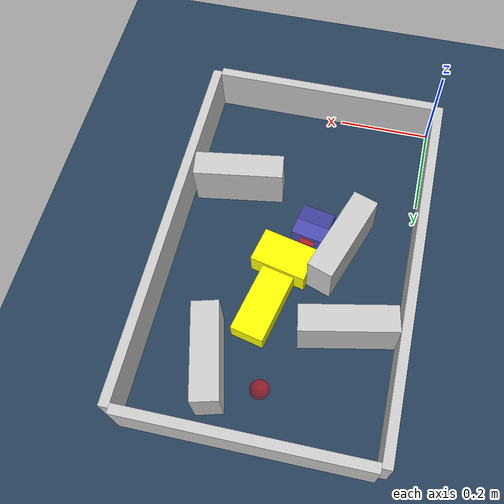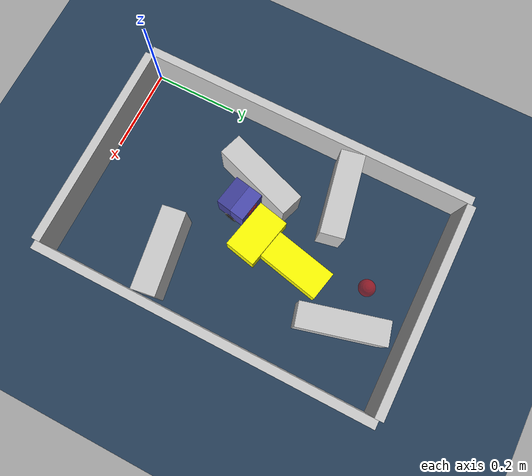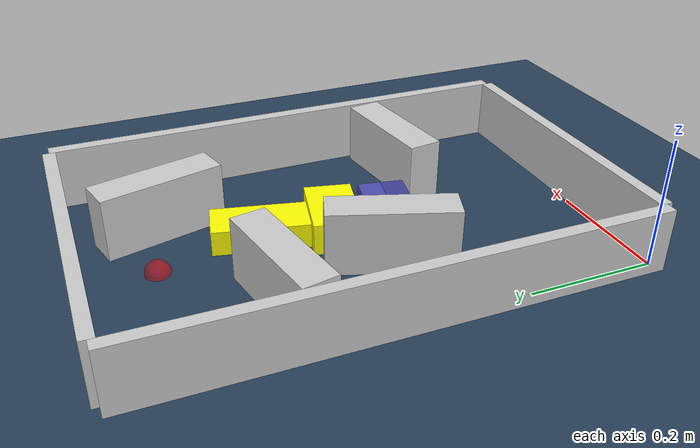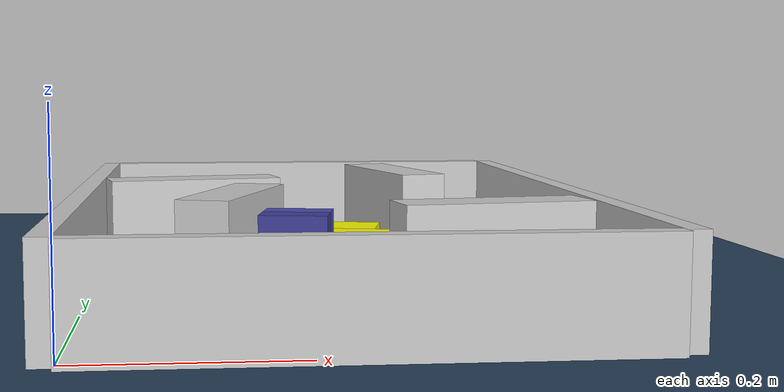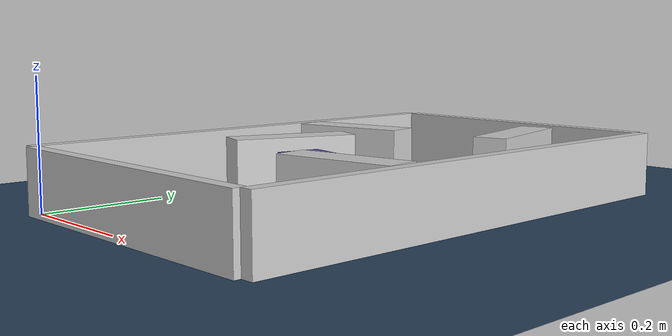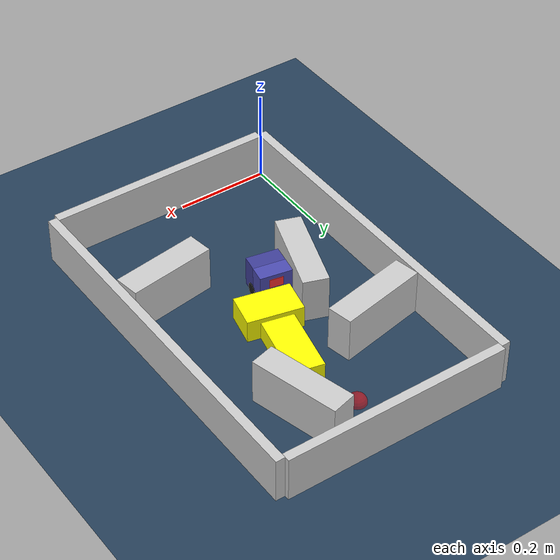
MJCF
<?xml version='1.0' encoding='utf-8'?>
<mujoco model="real_buildable">
  <compiler angle="degree" />
  <option timestep="0.002" integrator="implicitfast" iterations="100" cone="elliptic" />
  <default>
    <geom density="1" />
  </default>
  <asset>
    <texture builtin="gradient" height="3072" rgb1="0.3 0.5 0.7" rgb2="0 0 0" type="skybox" width="512" />
    <texture builtin="checker" height="300" mark="edge" markrgb="0.8 0.8 0.8" name="groundplane" rgb1="0.2 0.3 0.4" rgb2="0.1 0.2 0.3" type="2d" width="300" />
    <material name="groundplane" reflectance="0.2" texrepeat="5 5" texture="groundplane" texuniform="true" />
  </asset>
  <worldbody>
    <light dir="0 0 -1" directional="true" pos="0 0 1.5" />
    <geom name="floor" type="plane" condim="4" friction="0.5 0.005 0.001" material="groundplane" size="0 0 0.05" />
    <body name="walls">
      <geom name="wall_boundary_left" type="box" condim="4" friction="1.0 0.005 0.0001" rgba="0.8 0.8 0.8 1" pos="-0.010000 0.387500 0.050000" euler="0 0 0.000000" size="0.010000 0.397500 0.050000" />
      <geom name="wall_boundary_right" type="box" condim="4" friction="1.0 0.005 0.0001" rgba="0.8 0.8 0.8 1" pos="0.500000 0.387500 0.050000" euler="0 0 0.000000" size="0.010000 0.397500 0.050000" />
      <geom name="wall_boundary_bottom" type="box" condim="4" friction="1.0 0.005 0.0001" rgba="0.8 0.8 0.8 1" pos="0.245000 -0.010000 0.050000" euler="0 0 0.000000" size="0.245000 0.010000 0.050000" />
      <geom name="wall_boundary_top" type="box" condim="4" friction="1.0 0.005 0.0001" rgba="0.8 0.8 0.8 1" pos="0.245000 0.785000 0.050000" euler="0 0 0.000000" size="0.245000 0.010000 0.050000" />
      <geom name="wall_inner_1" type="box" condim="4" friction="1.0 0.005 0.0001" rgba="0.8 0.8 0.8 1" pos="0.390000 0.233000 0.050000" euler="0 0 8.500000" size="0.095000 0.027500 0.050000" />
      <geom name="wall_inner_2" type="box" condim="4" friction="1.0 0.005 0.0001" rgba="0.8 0.8 0.8 1" pos="0.143000 0.349000 0.050000" euler="0 0 71.000000" size="0.097500 0.027500 0.050000" />
      <geom name="wall_inner_3" type="box" condim="4" friction="1.0 0.005 0.0001" rgba="0.8 0.8 0.8 1" pos="0.101000 0.527000 0.050000" euler="0 0 11.200000" size="0.097500 0.027500 0.050000" />
      <geom name="wall_inner_4" type="box" condim="4" friction="1.0 0.005 0.0001" rgba="0.8 0.8 0.8 1" pos="0.352000 0.644000 0.050000" euler="0 0 104.700000" size="0.097500 0.027500 0.050000" />
    </body>
    <body name="car" pos="0.20794687672697768 0.33010594344148109 0.01" quat="0.76932893992722373 0 0 0.63885286427349941">
      <freejoint name="car_freejoint" />
      <inertial pos="0 0 0.0375" mass="0.35" diaginertia="0.000266 0.000266 0.000286" />
      <geom name="front_chassis_collision" type="box" pos="0.0175 0 0.0375" size="0.0175 0.035 0.0325" rgba="0.3 0.3 0.7 1" />
      <geom name="rear_chassis_collision" type="box" pos="-0.0175 0 0.0375" size="0.0175 0.035 0.0325" rgba="0.25 0.25 0.6 1" />
      <geom name="front_marker" type="box" pos="0.034 0 0.0505" size="0.002 0.015 0.01" rgba="1 0.2 0.2 1" contype="0" conaffinity="0" />
      <body name="rear_support_body" pos="-0.03 0 0.0025">
        <joint name="rear_caster_joint" type="ball" damping="0.0001" />
        <inertial pos="0 0 0" mass="0.025" diaginertia="0.000001 0.000001 0.000001" />
        <geom name="rear_support" type="sphere" pos="0 0 0" size="0.0025" friction="0 0 0" rgba="0.7 0.1 0.1 1" />
      </body>
      <body name="front_support_body" pos="0.03 0 0.0025">
        <joint name="front_caster_joint" type="ball" damping="0.0001" />
        <inertial pos="0 0 0" mass="0.025" diaginertia="0.000001 0.000001 0.000001" />
        <geom name="front_support" type="sphere" pos="0 0 0" size="0.0025" friction="0 0 0" rgba="0.1 0.7 0.1 1" />
      </body>
      <body name="left_wheel" pos="0 0.0375 0.015">
        <inertial pos="0 0 0" mass="0.05" diaginertia="0.000003 0.000006 0.000003" />
        <joint name="left_wheel_joint" type="hinge" axis="0 1 0" damping="0.01" armature="0.0001" />
        <geom name="left_wheel_collision" type="cylinder" size="0.015 0.0005" euler="90 0 0" rgba="0.1 0.1 0.1 1" />
      </body>
      <body name="right_wheel" pos="0 -0.0375 0.015">
        <inertial pos="0 0 0" mass="0.05" diaginertia="0.000003 0.000006 0.000003" />
        <joint name="right_wheel_joint" type="hinge" axis="0 1 0" damping="0.01" armature="0.0001" />
        <geom name="right_wheel_collision" type="cylinder" size="0.015 0.0005" euler="90 0 0" rgba="0.1 0.1 0.1 1" />
      </body>
    </body>
    <body name="obstacle_0_movable">
      <geom name="obstacle_0_movable" condim="4" pos="0.25497619089400625 0.39640742418592956 0.025000000000000001" friction="1 0.005 0.0001" rgba="1 1 0 1" size="0.037500 0.060000 0.025000" type="box" mass="0.1" quat="0.77954155188141783 0 0 0.62635051599748104" />
      <joint type="free" />
    </body>
    <body name="obstacle_1_movable">
      <geom name="obstacle_1_movable" condim="4" pos="0.27633010004493475 0.50684437298548524 0.02" friction="1 0.005 0.0001" rgba="1 1 0 1" size="0.035000 0.075000 0.020000" type="box" mass="0.1" quat="0.99408351200697076 0 0 -0.10861846599858965" />
      <joint type="free" />
    </body>
    <site name="goal" type="sphere" pos="0.245000 0.671000 0.0" size="0.02" rgba="1 0 0 0.5" />
  </worldbody>
  <actuator>
    <velocity name="left_wheel_drive" joint="left_wheel_joint" ctrlrange="-25 25" kv="0.75" forcerange="-0.5 0.5" />
    <velocity name="right_wheel_drive" joint="right_wheel_joint" ctrlrange="-25 25" kv="0.75" forcerange="-0.5 0.5" />
  </actuator>
</mujoco>
